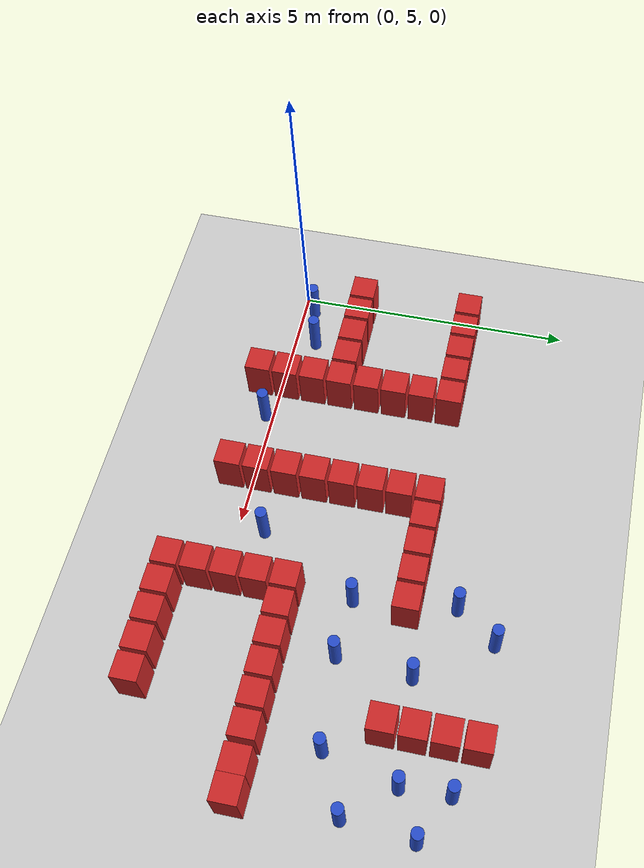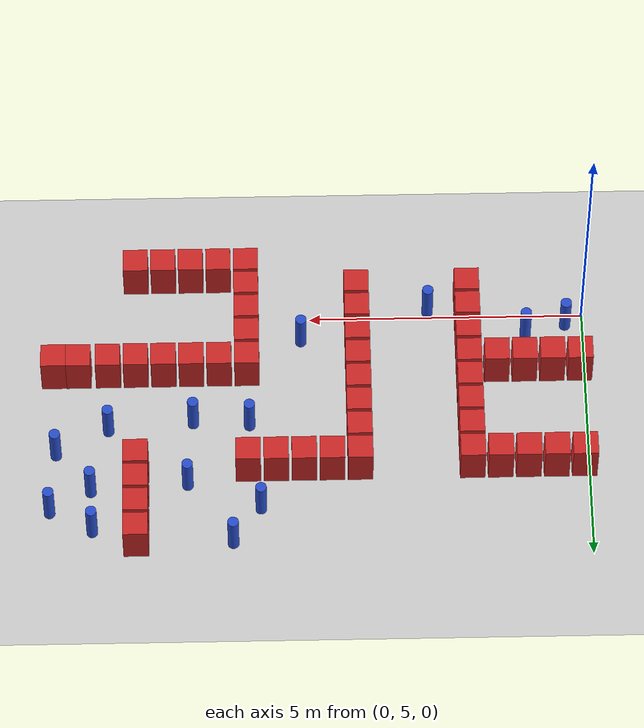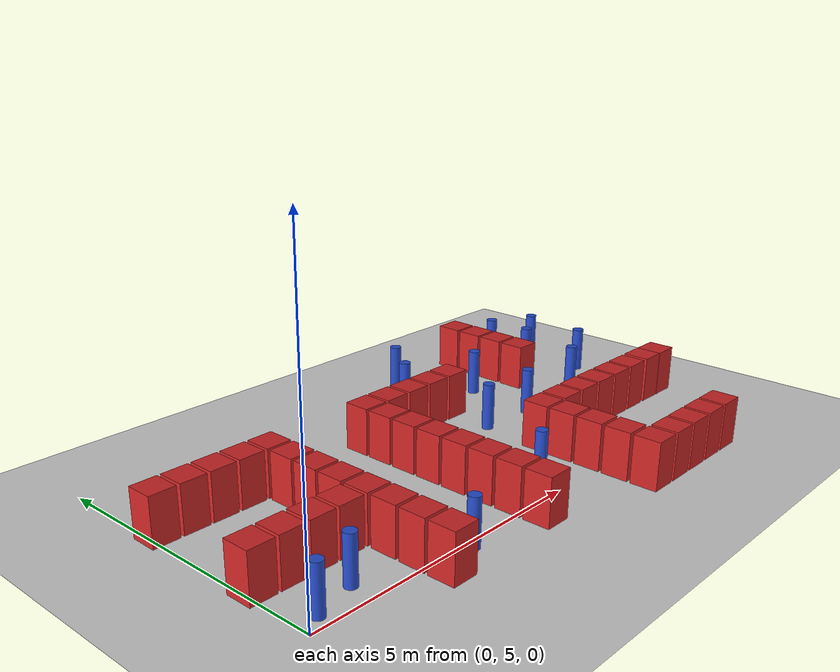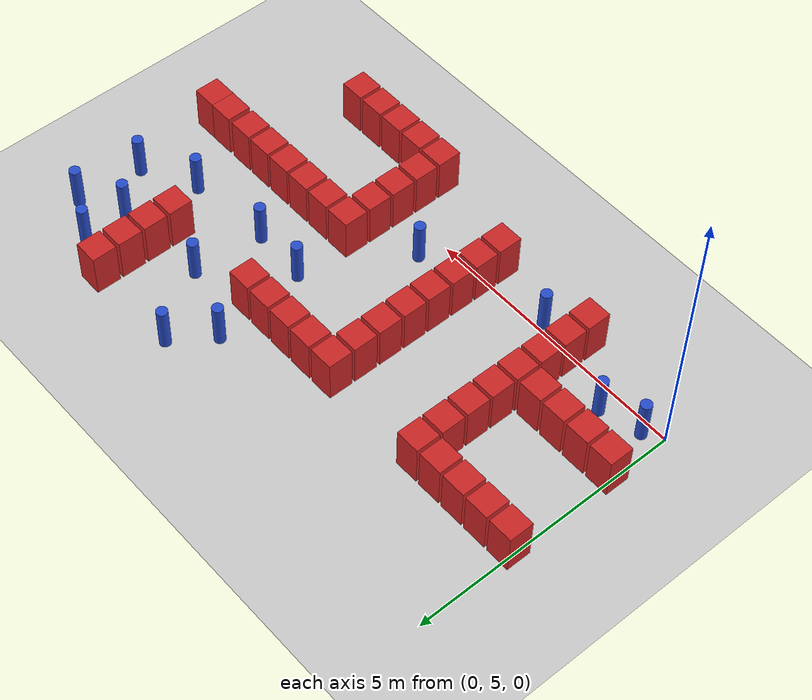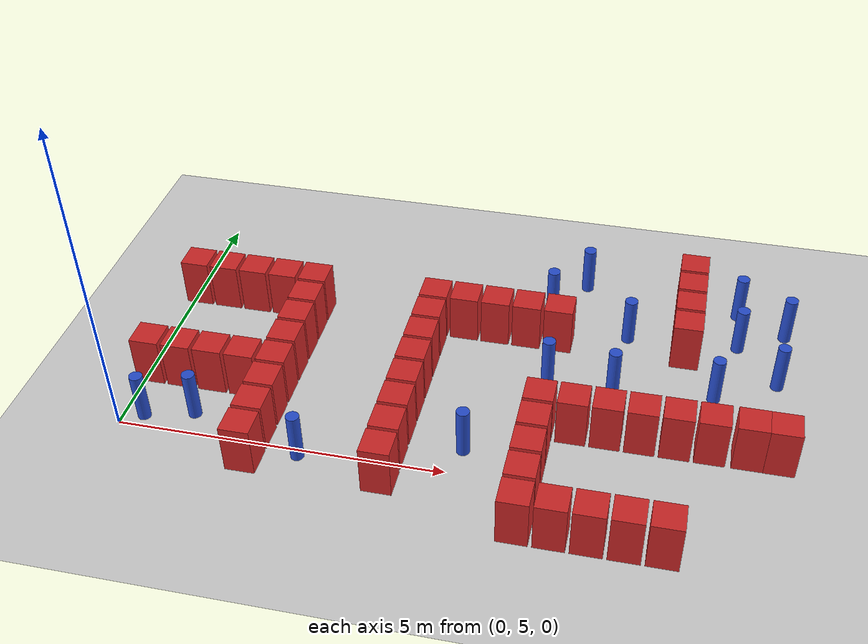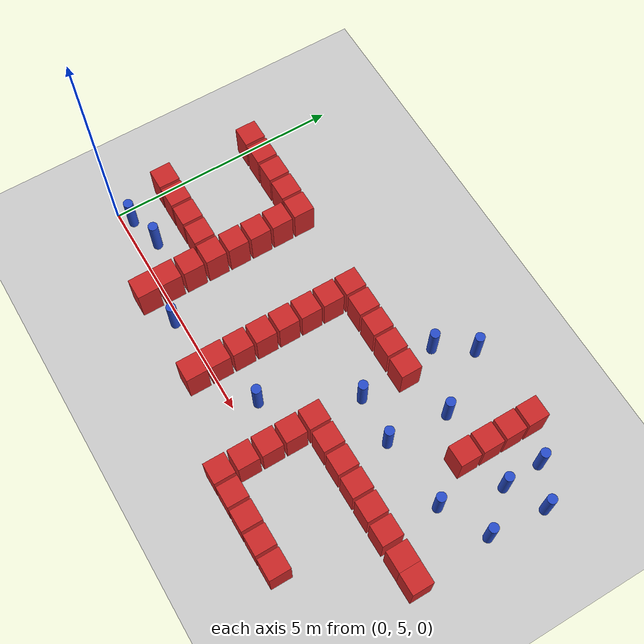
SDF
<sdf version="1.6">
 <world name="default">
  <model name="ground_plane">
   <static>1</static>
   <link name="link">
    <collision name="collision">
     <geometry><plane><normal>0 0 1</normal><size>100 100</size></plane></geometry>
     <surface><friction><ode><mu>100</mu><mu2>50</mu2></ode></friction></surface>
    </collision>
    <visual name="visual">
     <cast_shadows>0</cast_shadows>
     <geometry><plane><normal>0 0 1</normal><size>100 100</size></plane></geometry>
     <material>
      <script><uri>file://media/materials/scripts/gazebo.material</uri><name>Gazebo/Grey</name></script>
     </material>
    </visual>
   </link>
  </model>
  <model name="box_obstacle163">
   <static>0</static>
   <link name="box_obstacle">
    <pose>0 0 0.1 0 -0 0</pose>
    <inertial>
     <mass>100</mass>
     <inertia>
      <ixx>0.166667</ixx>
      <ixy>0</ixy>
      <ixz>0</ixz>
      <iyy>0.166667</iyy>
      <iyz>0</iyz>
      <izz>0.166667</izz>
     </inertia>
    </inertial>
    <collision name="collision"><geometry><box><size>0.45 0.45 0.8</size></box></geometry></collision>
    <visual name="visual">
     <geometry><box><size>0.45 0.45 0.8</size></box></geometry>
     <material>
      <script><name>Gazebo/Red</name><uri>file://media/materials/scripts/gazebo.material</uri></script>
     </material>
    </visual>
   </link>
   <pose>0.099553 6.15973 0.299997 -3e-06 5e-06 -4e-06</pose>
  </model>
  <model name="box_obstacle164">
   <static>0</static>
   <link name="box_obstacle">
    <pose>0 0 0.1 0 -0 0</pose>
    <inertial>
     <mass>100</mass>
     <inertia>
      <ixx>0.166667</ixx>
      <ixy>0</ixy>
      <ixz>0</ixz>
      <iyy>0.166667</iyy>
      <iyz>0</iyz>
      <izz>0.166667</izz>
     </inertia>
    </inertial>
    <collision name="collision"><geometry><box><size>0.45 0.45 0.8</size></box></geometry></collision>
    <visual name="visual">
     <geometry><box><size>0.45 0.45 0.8</size></box></geometry>
     <material>
      <script><name>Gazebo/Red</name><uri>file://media/materials/scripts/gazebo.material</uri></script>
     </material>
    </visual>
   </link>
   <pose>0.099553 8.17973 0.299997 -3e-06 5e-06 -4e-06</pose>
  </model>
  <model name="box_obstacle170">
   <static>0</static>
   <link name="box_obstacle">
    <pose>0 0 0.1 0 -0 0</pose>
    <inertial>
     <mass>100</mass>
     <inertia>
      <ixx>0.166667</ixx>
      <ixy>0</ixy>
      <ixz>0</ixz>
      <iyy>0.166667</iyy>
      <iyz>0</iyz>
      <izz>0.166667</izz>
     </inertia>
    </inertial>
    <collision name="collision"><geometry><box><size>0.45 0.45 0.8</size></box></geometry></collision>
    <visual name="visual">
     <geometry><box><size>0.45 0.45 0.8</size></box></geometry>
     <material>
      <script><name>Gazebo/Red</name><uri>file://media/materials/scripts/gazebo.material</uri></script>
     </material>
    </visual>
   </link>
   <pose>0.604553 6.15973 0.299997 -3e-06 5e-06 -4e-06</pose>
  </model>
  <model name="box_obstacle171">
   <static>0</static>
   <link name="box_obstacle">
    <pose>0 0 0.1 0 -0 0</pose>
    <inertial>
     <mass>100</mass>
     <inertia>
      <ixx>0.166667</ixx>
      <ixy>0</ixy>
      <ixz>0</ixz>
      <iyy>0.166667</iyy>
      <iyz>0</iyz>
      <izz>0.166667</izz>
     </inertia>
    </inertial>
    <collision name="collision"><geometry><box><size>0.45 0.45 0.8</size></box></geometry></collision>
    <visual name="visual">
     <geometry><box><size>0.45 0.45 0.8</size></box></geometry>
     <material>
      <script><name>Gazebo/Red</name><uri>file://media/materials/scripts/gazebo.material</uri></script>
     </material>
    </visual>
   </link>
   <pose>0.604553 8.17973 0.299997 -3e-06 5e-06 -4e-06</pose>
  </model>
  <model name="box_obstacle177">
   <static>0</static>
   <link name="box_obstacle">
    <pose>0 0 0.1 0 -0 0</pose>
    <inertial>
     <mass>100</mass>
     <inertia>
      <ixx>0.166667</ixx>
      <ixy>0</ixy>
      <ixz>0</ixz>
      <iyy>0.166667</iyy>
      <iyz>0</iyz>
      <izz>0.166667</izz>
     </inertia>
    </inertial>
    <collision name="collision"><geometry><box><size>0.45 0.45 0.8</size></box></geometry></collision>
    <visual name="visual">
     <geometry><box><size>0.45 0.45 0.8</size></box></geometry>
     <material>
      <script><name>Gazebo/Red</name><uri>file://media/materials/scripts/gazebo.material</uri></script>
     </material>
    </visual>
   </link>
   <pose>1.10955 6.15973 0.299997 -3e-06 5e-06 -4e-06</pose>
  </model>
  <model name="box_obstacle178">
   <static>0</static>
   <link name="box_obstacle">
    <pose>0 0 0.1 0 -0 0</pose>
    <inertial>
     <mass>100</mass>
     <inertia>
      <ixx>0.166667</ixx>
      <ixy>0</ixy>
      <ixz>0</ixz>
      <iyy>0.166667</iyy>
      <iyz>0</iyz>
      <izz>0.166667</izz>
     </inertia>
    </inertial>
    <collision name="collision"><geometry><box><size>0.45 0.45 0.8</size></box></geometry></collision>
    <visual name="visual">
     <geometry><box><size>0.45 0.45 0.8</size></box></geometry>
     <material>
      <script><name>Gazebo/Red</name><uri>file://media/materials/scripts/gazebo.material</uri></script>
     </material>
    </visual>
   </link>
   <pose>1.10955 8.17973 0.299997 -3e-06 5e-06 -4e-06</pose>
  </model>
  <model name="box_obstacle184">
   <static>0</static>
   <link name="box_obstacle">
    <pose>0 0 0.1 0 -0 0</pose>
    <inertial>
     <mass>100</mass>
     <inertia>
      <ixx>0.166667</ixx>
      <ixy>0</ixy>
      <ixz>0</ixz>
      <iyy>0.166667</iyy>
      <iyz>0</iyz>
      <izz>0.166667</izz>
     </inertia>
    </inertial>
    <collision name="collision"><geometry><box><size>0.45 0.45 0.8</size></box></geometry></collision>
    <visual name="visual">
     <geometry><box><size>0.45 0.45 0.8</size></box></geometry>
     <material>
      <script><name>Gazebo/Red</name><uri>file://media/materials/scripts/gazebo.material</uri></script>
     </material>
    </visual>
   </link>
   <pose>1.61455 6.15973 0.299997 -3e-06 5e-06 -4e-06</pose>
  </model>
  <model name="box_obstacle185">
   <static>0</static>
   <link name="box_obstacle">
    <pose>0 0 0.1 0 -0 0</pose>
    <inertial>
     <mass>100</mass>
     <inertia>
      <ixx>0.166667</ixx>
      <ixy>0</ixy>
      <ixz>0</ixz>
      <iyy>0.166667</iyy>
      <iyz>0</iyz>
      <izz>0.166667</izz>
     </inertia>
    </inertial>
    <collision name="collision"><geometry><box><size>0.45 0.45 0.8</size></box></geometry></collision>
    <visual name="visual">
     <geometry><box><size>0.45 0.45 0.8</size></box></geometry>
     <material>
      <script><name>Gazebo/Red</name><uri>file://media/materials/scripts/gazebo.material</uri></script>
     </material>
    </visual>
   </link>
   <pose>1.61455 8.17973 0.299997 -3e-06 5e-06 -4e-06</pose>
  </model>
  <model name="box_obstacle199">
   <static>0</static>
   <link name="box_obstacle">
    <pose>0 0 0.1 0 -0 0</pose>
    <inertial>
     <mass>100</mass>
     <inertia>
      <ixx>0.166667</ixx>
      <ixy>0</ixy>
      <ixz>0</ixz>
      <iyy>0.166667</iyy>
      <iyz>0</iyz>
      <izz>0.166667</izz>
     </inertia>
    </inertial>
    <collision name="collision"><geometry><box><size>0.45 0.45 0.8</size></box></geometry></collision>
    <visual name="visual">
     <geometry><box><size>0.45 0.45 0.8</size></box></geometry>
     <material>
      <script><name>Gazebo/Red</name><uri>file://media/materials/scripts/gazebo.material</uri></script>
     </material>
    </visual>
   </link>
   <pose>2.11955 4.64473 0.299997 -3e-06 5e-06 -4e-06</pose>
  </model>
  <model name="box_obstacle200">
   <static>0</static>
   <link name="box_obstacle">
    <pose>0 0 0.1 0 -0 0</pose>
    <inertial>
     <mass>100</mass>
     <inertia>
      <ixx>0.166667</ixx>
      <ixy>0</ixy>
      <ixz>0</ixz>
      <iyy>0.166667</iyy>
      <iyz>0</iyz>
      <izz>0.166667</izz>
     </inertia>
    </inertial>
    <collision name="collision"><geometry><box><size>0.45 0.45 0.8</size></box></geometry></collision>
    <visual name="visual">
     <geometry><box><size>0.45 0.45 0.8</size></box></geometry>
     <material>
      <script><name>Gazebo/Red</name><uri>file://media/materials/scripts/gazebo.material</uri></script>
     </material>
    </visual>
   </link>
   <pose>2.11955 5.14973 0.299997 -3e-06 5e-06 -4e-06</pose>
  </model>
  <model name="box_obstacle201">
   <static>0</static>
   <link name="box_obstacle">
    <pose>0 0 0.1 0 -0 0</pose>
    <inertial>
     <mass>100</mass>
     <inertia>
      <ixx>0.166667</ixx>
      <ixy>0</ixy>
      <ixz>0</ixz>
      <iyy>0.166667</iyy>
      <iyz>0</iyz>
      <izz>0.166667</izz>
     </inertia>
    </inertial>
    <collision name="collision"><geometry><box><size>0.45 0.45 0.8</size></box></geometry></collision>
    <visual name="visual">
     <geometry><box><size>0.45 0.45 0.8</size></box></geometry>
     <material>
      <script><name>Gazebo/Red</name><uri>file://media/materials/scripts/gazebo.material</uri></script>
     </material>
    </visual>
   </link>
   <pose>2.11955 5.65473 0.299997 -3e-06 5e-06 -4e-06</pose>
  </model>
  <model name="box_obstacle202">
   <static>0</static>
   <link name="box_obstacle">
    <pose>0 0 0.1 0 -0 0</pose>
    <inertial>
     <mass>100</mass>
     <inertia>
      <ixx>0.166667</ixx>
      <ixy>0</ixy>
      <ixz>0</ixz>
      <iyy>0.166667</iyy>
      <iyz>0</iyz>
      <izz>0.166667</izz>
     </inertia>
    </inertial>
    <collision name="collision"><geometry><box><size>0.45 0.45 0.8</size></box></geometry></collision>
    <visual name="visual">
     <geometry><box><size>0.45 0.45 0.8</size></box></geometry>
     <material>
      <script><name>Gazebo/Red</name><uri>file://media/materials/scripts/gazebo.material</uri></script>
     </material>
    </visual>
   </link>
   <pose>2.11955 6.15973 0.299997 -3e-06 5e-06 -4e-06</pose>
  </model>
  <model name="box_obstacle203">
   <static>0</static>
   <link name="box_obstacle">
    <pose>0 0 0.1 0 -0 0</pose>
    <inertial>
     <mass>100</mass>
     <inertia>
      <ixx>0.166667</ixx>
      <ixy>0</ixy>
      <ixz>0</ixz>
      <iyy>0.166667</iyy>
      <iyz>0</iyz>
      <izz>0.166667</izz>
     </inertia>
    </inertial>
    <collision name="collision"><geometry><box><size>0.45 0.45 0.8</size></box></geometry></collision>
    <visual name="visual">
     <geometry><box><size>0.45 0.45 0.8</size></box></geometry>
     <material>
      <script><name>Gazebo/Red</name><uri>file://media/materials/scripts/gazebo.material</uri></script>
     </material>
    </visual>
   </link>
   <pose>2.11955 6.66473 0.299997 -3e-06 5e-06 -4e-06</pose>
  </model>
  <model name="box_obstacle204">
   <static>0</static>
   <link name="box_obstacle">
    <pose>0 0 0.1 0 -0 0</pose>
    <inertial>
     <mass>100</mass>
     <inertia>
      <ixx>0.166667</ixx>
      <ixy>0</ixy>
      <ixz>0</ixz>
      <iyy>0.166667</iyy>
      <iyz>0</iyz>
      <izz>0.166667</izz>
     </inertia>
    </inertial>
    <collision name="collision"><geometry><box><size>0.45 0.45 0.8</size></box></geometry></collision>
    <visual name="visual">
     <geometry><box><size>0.45 0.45 0.8</size></box></geometry>
     <material>
      <script><name>Gazebo/Red</name><uri>file://media/materials/scripts/gazebo.material</uri></script>
     </material>
    </visual>
   </link>
   <pose>2.11955 7.16973 0.299997 -3e-06 5e-06 -4e-06</pose>
  </model>
  <model name="box_obstacle205">
   <static>0</static>
   <link name="box_obstacle">
    <pose>0 0 0.1 0 -0 0</pose>
    <inertial>
     <mass>100</mass>
     <inertia>
      <ixx>0.166667</ixx>
      <ixy>0</ixy>
      <ixz>0</ixz>
      <iyy>0.166667</iyy>
      <iyz>0</iyz>
      <izz>0.166667</izz>
     </inertia>
    </inertial>
    <collision name="collision"><geometry><box><size>0.45 0.45 0.8</size></box></geometry></collision>
    <visual name="visual">
     <geometry><box><size>0.45 0.45 0.8</size></box></geometry>
     <material>
      <script><name>Gazebo/Red</name><uri>file://media/materials/scripts/gazebo.material</uri></script>
     </material>
    </visual>
   </link>
   <pose>2.11955 7.67473 0.299997 -3e-06 5e-06 -4e-06</pose>
  </model>
  <model name="box_obstacle206">
   <static>0</static>
   <link name="box_obstacle">
    <pose>0 0 0.1 0 -0 0</pose>
    <inertial>
     <mass>100</mass>
     <inertia>
      <ixx>0.166667</ixx>
      <ixy>0</ixy>
      <ixz>0</ixz>
      <iyy>0.166667</iyy>
      <iyz>0</iyz>
      <izz>0.166667</izz>
     </inertia>
    </inertial>
    <collision name="collision"><geometry><box><size>0.45 0.45 0.8</size></box></geometry></collision>
    <visual name="visual">
     <geometry><box><size>0.45 0.45 0.8</size></box></geometry>
     <material>
      <script><name>Gazebo/Red</name><uri>file://media/materials/scripts/gazebo.material</uri></script>
     </material>
    </visual>
   </link>
   <pose>2.11955 8.17973 0.299997 -3e-06 5e-06 -4e-06</pose>
  </model>
  <model name="box_obstacle238">
   <static>0</static>
   <link name="box_obstacle">
    <pose>0 0 0.1 0 -0 0</pose>
    <inertial>
     <mass>100</mass>
     <inertia>
      <ixx>0.166667</ixx>
      <ixy>0</ixy>
      <ixz>0</ixz>
      <iyy>0.166667</iyy>
      <iyz>0</iyz>
      <izz>0.166667</izz>
     </inertia>
    </inertial>
    <collision name="collision"><geometry><box><size>0.45 0.45 0.8</size></box></geometry></collision>
    <visual name="visual">
     <geometry><box><size>0.45 0.45 0.8</size></box></geometry>
     <material>
      <script><name>Gazebo/Red</name><uri>file://media/materials/scripts/gazebo.material</uri></script>
     </material>
    </visual>
   </link>
   <pose>4.13955 4.64473 0.299997 -3e-06 5e-06 -4e-06</pose>
  </model>
  <model name="box_obstacle239">
   <static>0</static>
   <link name="box_obstacle">
    <pose>0 0 0.1 0 -0 0</pose>
    <inertial>
     <mass>100</mass>
     <inertia>
      <ixx>0.166667</ixx>
      <ixy>0</ixy>
      <ixz>0</ixz>
      <iyy>0.166667</iyy>
      <iyz>0</iyz>
      <izz>0.166667</izz>
     </inertia>
    </inertial>
    <collision name="collision"><geometry><box><size>0.45 0.45 0.8</size></box></geometry></collision>
    <visual name="visual">
     <geometry><box><size>0.45 0.45 0.8</size></box></geometry>
     <material>
      <script><name>Gazebo/Red</name><uri>file://media/materials/scripts/gazebo.material</uri></script>
     </material>
    </visual>
   </link>
   <pose>4.13955 5.14973 0.299997 -3e-06 5e-06 -4e-06</pose>
  </model>
  <model name="box_obstacle240">
   <static>0</static>
   <link name="box_obstacle">
    <pose>0 0 0.1 0 -0 0</pose>
    <inertial>
     <mass>100</mass>
     <inertia>
      <ixx>0.166667</ixx>
      <ixy>0</ixy>
      <ixz>0</ixz>
      <iyy>0.166667</iyy>
      <iyz>0</iyz>
      <izz>0.166667</izz>
     </inertia>
    </inertial>
    <collision name="collision"><geometry><box><size>0.45 0.45 0.8</size></box></geometry></collision>
    <visual name="visual">
     <geometry><box><size>0.45 0.45 0.8</size></box></geometry>
     <material>
      <script><name>Gazebo/Red</name><uri>file://media/materials/scripts/gazebo.material</uri></script>
     </material>
    </visual>
   </link>
   <pose>4.13955 5.65473 0.299997 -3e-06 5e-06 -4e-06</pose>
  </model>
  <model name="box_obstacle241">
   <static>0</static>
   <link name="box_obstacle">
    <pose>0 0 0.1 0 -0 0</pose>
    <inertial>
     <mass>100</mass>
     <inertia>
      <ixx>0.166667</ixx>
      <ixy>0</ixy>
      <ixz>0</ixz>
      <iyy>0.166667</iyy>
      <iyz>0</iyz>
      <izz>0.166667</izz>
     </inertia>
    </inertial>
    <collision name="collision"><geometry><box><size>0.45 0.45 0.8</size></box></geometry></collision>
    <visual name="visual">
     <geometry><box><size>0.45 0.45 0.8</size></box></geometry>
     <material>
      <script><name>Gazebo/Red</name><uri>file://media/materials/scripts/gazebo.material</uri></script>
     </material>
    </visual>
   </link>
   <pose>4.13955 6.15973 0.299997 -3e-06 5e-06 -4e-06</pose>
  </model>
  <model name="box_obstacle242">
   <static>0</static>
   <link name="box_obstacle">
    <pose>0 0 0.1 0 -0 0</pose>
    <inertial>
     <mass>100</mass>
     <inertia>
      <ixx>0.166667</ixx>
      <ixy>0</ixy>
      <ixz>0</ixz>
      <iyy>0.166667</iyy>
      <iyz>0</iyz>
      <izz>0.166667</izz>
     </inertia>
    </inertial>
    <collision name="collision"><geometry><box><size>0.45 0.45 0.8</size></box></geometry></collision>
    <visual name="visual">
     <geometry><box><size>0.45 0.45 0.8</size></box></geometry>
     <material>
      <script><name>Gazebo/Red</name><uri>file://media/materials/scripts/gazebo.material</uri></script>
     </material>
    </visual>
   </link>
   <pose>4.13955 6.66473 0.299997 -3e-06 5e-06 -4e-06</pose>
  </model>
  <model name="box_obstacle243">
   <static>0</static>
   <link name="box_obstacle">
    <pose>0 0 0.1 0 -0 0</pose>
    <inertial>
     <mass>100</mass>
     <inertia>
      <ixx>0.166667</ixx>
      <ixy>0</ixy>
      <ixz>0</ixz>
      <iyy>0.166667</iyy>
      <iyz>0</iyz>
      <izz>0.166667</izz>
     </inertia>
    </inertial>
    <collision name="collision"><geometry><box><size>0.45 0.45 0.8</size></box></geometry></collision>
    <visual name="visual">
     <geometry><box><size>0.45 0.45 0.8</size></box></geometry>
     <material>
      <script><name>Gazebo/Red</name><uri>file://media/materials/scripts/gazebo.material</uri></script>
     </material>
    </visual>
   </link>
   <pose>4.13955 7.16973 0.299997 -3e-06 5e-06 -4e-06</pose>
  </model>
  <model name="box_obstacle244">
   <static>0</static>
   <link name="box_obstacle">
    <pose>0 0 0.1 0 -0 0</pose>
    <inertial>
     <mass>100</mass>
     <inertia>
      <ixx>0.166667</ixx>
      <ixy>0</ixy>
      <ixz>0</ixz>
      <iyy>0.166667</iyy>
      <iyz>0</iyz>
      <izz>0.166667</izz>
     </inertia>
    </inertial>
    <collision name="collision"><geometry><box><size>0.45 0.45 0.8</size></box></geometry></collision>
    <visual name="visual">
     <geometry><box><size>0.45 0.45 0.8</size></box></geometry>
     <material>
      <script><name>Gazebo/Red</name><uri>file://media/materials/scripts/gazebo.material</uri></script>
     </material>
    </visual>
   </link>
   <pose>4.13955 7.67473 0.299997 -3e-06 5e-06 -4e-06</pose>
  </model>
  <model name="box_obstacle245">
   <static>0</static>
   <link name="box_obstacle">
    <pose>0 0 0.1 0 -0 0</pose>
    <inertial>
     <mass>100</mass>
     <inertia>
      <ixx>0.166667</ixx>
      <ixy>0</ixy>
      <ixz>0</ixz>
      <iyy>0.166667</iyy>
      <iyz>0</iyz>
      <izz>0.166667</izz>
     </inertia>
    </inertial>
    <collision name="collision"><geometry><box><size>0.45 0.45 0.8</size></box></geometry></collision>
    <visual name="visual">
     <geometry><box><size>0.45 0.45 0.8</size></box></geometry>
     <material>
      <script><name>Gazebo/Red</name><uri>file://media/materials/scripts/gazebo.material</uri></script>
     </material>
    </visual>
   </link>
   <pose>4.13955 8.17973 0.299997 -3e-06 5e-06 -4e-06</pose>
  </model>
  <model name="box_obstacle249">
   <static>0</static>
   <link name="box_obstacle">
    <pose>0 0 0.1 0 -0 0</pose>
    <inertial>
     <mass>100</mass>
     <inertia>
      <ixx>0.166667</ixx>
      <ixy>0</ixy>
      <ixz>0</ixz>
      <iyy>0.166667</iyy>
      <iyz>0</iyz>
      <izz>0.166667</izz>
     </inertia>
    </inertial>
    <collision name="collision"><geometry><box><size>0.45 0.45 0.8</size></box></geometry></collision>
    <visual name="visual">
     <geometry><box><size>0.45 0.45 0.8</size></box></geometry>
     <material>
      <script><name>Gazebo/Red</name><uri>file://media/materials/scripts/gazebo.material</uri></script>
     </material>
    </visual>
   </link>
   <pose>4.64455 8.17973 0.299997 -3e-06 5e-06 -4e-06</pose>
  </model>
  <model name="box_obstacle253">
   <static>0</static>
   <link name="box_obstacle">
    <pose>0 0 0.1 0 -0 0</pose>
    <inertial>
     <mass>100</mass>
     <inertia>
      <ixx>0.166667</ixx>
      <ixy>0</ixy>
      <ixz>0</ixz>
      <iyy>0.166667</iyy>
      <iyz>0</iyz>
      <izz>0.166667</izz>
     </inertia>
    </inertial>
    <collision name="collision"><geometry><box><size>0.45 0.45 0.8</size></box></geometry></collision>
    <visual name="visual">
     <geometry><box><size>0.45 0.45 0.8</size></box></geometry>
     <material>
      <script><name>Gazebo/Red</name><uri>file://media/materials/scripts/gazebo.material</uri></script>
     </material>
    </visual>
   </link>
   <pose>5.14955 8.17973 0.299997 -3e-06 5e-06 -4e-06</pose>
  </model>
  <model name="box_obstacle257">
   <static>0</static>
   <link name="box_obstacle">
    <pose>0 0 0.1 0 -0 0</pose>
    <inertial>
     <mass>100</mass>
     <inertia>
      <ixx>0.166667</ixx>
      <ixy>0</ixy>
      <ixz>0</ixz>
      <iyy>0.166667</iyy>
      <iyz>0</iyz>
      <izz>0.166667</izz>
     </inertia>
    </inertial>
    <collision name="collision"><geometry><box><size>0.45 0.45 0.8</size></box></geometry></collision>
    <visual name="visual">
     <geometry><box><size>0.45 0.45 0.8</size></box></geometry>
     <material>
      <script><name>Gazebo/Red</name><uri>file://media/materials/scripts/gazebo.material</uri></script>
     </material>
    </visual>
   </link>
   <pose>5.65455 8.17973 0.299997 -3e-06 5e-06 -4e-06</pose>
  </model>
  <model name="box_obstacle276">
   <static>0</static>
   <link name="box_obstacle">
    <pose>0 0 0.1 0 -0 0</pose>
    <inertial>
     <mass>100</mass>
     <inertia>
      <ixx>0.166667</ixx>
      <ixy>0</ixy>
      <ixz>0</ixz>
      <iyy>0.166667</iyy>
      <iyz>0</iyz>
      <izz>0.166667</izz>
     </inertia>
    </inertial>
    <collision name="collision"><geometry><box><size>0.45 0.45 0.8</size></box></geometry></collision>
    <visual name="visual">
     <geometry><box><size>0.45 0.45 0.8</size></box></geometry>
     <material>
      <script><name>Gazebo/Red</name><uri>file://media/materials/scripts/gazebo.material</uri></script>
     </material>
    </visual>
   </link>
   <pose>6.15955 4.13973 0.299997 -3e-06 5e-06 -4e-06</pose>
  </model>
  <model name="box_obstacle277">
   <static>0</static>
   <link name="box_obstacle">
    <pose>0 0 0.1 0 -0 0</pose>
    <inertial>
     <mass>100</mass>
     <inertia>
      <ixx>0.166667</ixx>
      <ixy>0</ixy>
      <ixz>0</ixz>
      <iyy>0.166667</iyy>
      <iyz>0</iyz>
      <izz>0.166667</izz>
     </inertia>
    </inertial>
    <collision name="collision"><geometry><box><size>0.45 0.45 0.8</size></box></geometry></collision>
    <visual name="visual">
     <geometry><box><size>0.45 0.45 0.8</size></box></geometry>
     <material>
      <script><name>Gazebo/Red</name><uri>file://media/materials/scripts/gazebo.material</uri></script>
     </material>
    </visual>
   </link>
   <pose>6.15955 4.64473 0.299997 -3e-06 5e-06 -4e-06</pose>
  </model>
  <model name="box_obstacle278">
   <static>0</static>
   <link name="box_obstacle">
    <pose>0 0 0.1 0 -0 0</pose>
    <inertial>
     <mass>100</mass>
     <inertia>
      <ixx>0.166667</ixx>
      <ixy>0</ixy>
      <ixz>0</ixz>
      <iyy>0.166667</iyy>
      <iyz>0</iyz>
      <izz>0.166667</izz>
     </inertia>
    </inertial>
    <collision name="collision"><geometry><box><size>0.45 0.45 0.8</size></box></geometry></collision>
    <visual name="visual">
     <geometry><box><size>0.45 0.45 0.8</size></box></geometry>
     <material>
      <script><name>Gazebo/Red</name><uri>file://media/materials/scripts/gazebo.material</uri></script>
     </material>
    </visual>
   </link>
   <pose>6.15955 5.14973 0.299997 -3e-06 5e-06 -4e-06</pose>
  </model>
  <model name="box_obstacle279">
   <static>0</static>
   <link name="box_obstacle">
    <pose>0 0 0.1 0 -0 0</pose>
    <inertial>
     <mass>100</mass>
     <inertia>
      <ixx>0.166667</ixx>
      <ixy>0</ixy>
      <ixz>0</ixz>
      <iyy>0.166667</iyy>
      <iyz>0</iyz>
      <izz>0.166667</izz>
     </inertia>
    </inertial>
    <collision name="collision"><geometry><box><size>0.45 0.45 0.8</size></box></geometry></collision>
    <visual name="visual">
     <geometry><box><size>0.45 0.45 0.8</size></box></geometry>
     <material>
      <script><name>Gazebo/Red</name><uri>file://media/materials/scripts/gazebo.material</uri></script>
     </material>
    </visual>
   </link>
   <pose>6.15955 5.65473 0.299997 -3e-06 5e-06 -4e-06</pose>
  </model>
  <model name="box_obstacle280">
   <static>0</static>
   <link name="box_obstacle">
    <pose>0 0 0.1 0 -0 0</pose>
    <inertial>
     <mass>100</mass>
     <inertia>
      <ixx>0.166667</ixx>
      <ixy>0</ixy>
      <ixz>0</ixz>
      <iyy>0.166667</iyy>
      <iyz>0</iyz>
      <izz>0.166667</izz>
     </inertia>
    </inertial>
    <collision name="collision"><geometry><box><size>0.45 0.45 0.8</size></box></geometry></collision>
    <visual name="visual">
     <geometry><box><size>0.45 0.45 0.8</size></box></geometry>
     <material>
      <script><name>Gazebo/Red</name><uri>file://media/materials/scripts/gazebo.material</uri></script>
     </material>
    </visual>
   </link>
   <pose>6.15955 6.15973 0.299997 -3e-06 5e-06 -4e-06</pose>
  </model>
  <model name="box_obstacle281">
   <static>0</static>
   <link name="box_obstacle">
    <pose>0 0 0.1 0 -0 0</pose>
    <inertial>
     <mass>100</mass>
     <inertia>
      <ixx>0.166667</ixx>
      <ixy>0</ixy>
      <ixz>0</ixz>
      <iyy>0.166667</iyy>
      <iyz>0</iyz>
      <izz>0.166667</izz>
     </inertia>
    </inertial>
    <collision name="collision"><geometry><box><size>0.45 0.45 0.8</size></box></geometry></collision>
    <visual name="visual">
     <geometry><box><size>0.45 0.45 0.8</size></box></geometry>
     <material>
      <script><name>Gazebo/Red</name><uri>file://media/materials/scripts/gazebo.material</uri></script>
     </material>
    </visual>
   </link>
   <pose>6.15955 8.17973 0.299997 -3e-06 5e-06 -4e-06</pose>
  </model>
  <model name="cylinder_obstacle7">
   <static>0</static>
   <link name="link">
    <pose>0 0 1 0 -0 0</pose>
    <inertial>
     <mass>100</mass>
     <inertia>
      <ixx>0.166667</ixx>
      <ixy>0</ixy>
      <ixz>0</ixz>
      <iyy>0.166667</iyy>
      <iyz>0</iyz>
      <izz>0.166667</izz>
     </inertia>
    </inertial>
    <collision name="collision">
     <geometry><cylinder><radius>0.1</radius><length>0.8</length></cylinder></geometry>
    </collision>
    <visual name="visual">
     <geometry><cylinder><radius>0.1</radius><length>0.8</length></cylinder></geometry>
     <material>
      <script><name>Gazebo/Blue</name><uri>file://media/materials/scripts/gazebo.material</uri></script>
     </material>
    </visual>
   </link>
   <pose>9.62781 7.81891 -0.600002 3e-06 1e-06 0.003885</pose>
  </model>
  <model name="cylinder_obstacle9">
   <static>0</static>
   <link name="link">
    <pose>0 0 1 0 -0 0</pose>
    <inertial>
     <mass>100</mass>
     <inertia>
      <ixx>0.166667</ixx>
      <ixy>0</ixy>
      <ixz>0</ixz>
      <iyy>0.166667</iyy>
      <iyz>0</iyz>
      <izz>0.166667</izz>
     </inertia>
    </inertial>
    <collision name="collision">
     <geometry><cylinder><radius>0.1</radius><length>0.8</length></cylinder></geometry>
    </collision>
    <visual name="visual">
     <geometry><cylinder><radius>0.1</radius><length>0.8</length></cylinder></geometry>
     <material>
      <script><name>Gazebo/Blue</name><uri>file://media/materials/scripts/gazebo.material</uri></script>
     </material>
    </visual>
   </link>
   <pose>6.44064 9.69757 -0.600002 3e-06 1e-06 0.003885</pose>
  </model>
  <model name="cylinder_obstacle13">
   <static>0</static>
   <link name="link">
    <pose>0 0 1 0 -0 0</pose>
    <inertial>
     <mass>100</mass>
     <inertia>
      <ixx>0.166667</ixx>
      <ixy>0</ixy>
      <ixz>0</ixz>
      <iyy>0.166667</iyy>
      <iyz>0</iyz>
      <izz>0.166667</izz>
     </inertia>
    </inertial>
    <collision name="collision">
     <geometry><cylinder><radius>0.1</radius><length>0.8</length></cylinder></geometry>
    </collision>
    <visual name="visual">
     <geometry><cylinder><radius>0.1</radius><length>0.8</length></cylinder></geometry>
     <material>
      <script><name>Gazebo/Blue</name><uri>file://media/materials/scripts/gazebo.material</uri></script>
     </material>
    </visual>
   </link>
   <pose>8.96771 9.42528 -0.600002 3e-06 1e-06 0.003885</pose>
  </model>
  <model name="cylinder_obstacle18">
   <static>0</static>
   <link name="link">
    <pose>0 0 1 0 -0 0</pose>
    <inertial>
     <mass>100</mass>
     <inertia>
      <ixx>0.166667</ixx>
      <ixy>0</ixy>
      <ixz>0</ixz>
      <iyy>0.166667</iyy>
      <iyz>0</iyz>
      <izz>0.166667</izz>
     </inertia>
    </inertial>
    <collision name="collision">
     <geometry><cylinder><radius>0.1</radius><length>0.8</length></cylinder></geometry>
    </collision>
    <visual name="visual">
     <geometry><cylinder><radius>0.1</radius><length>0.8</length></cylinder></geometry>
     <material>
      <script><name>Gazebo/Blue</name><uri>file://media/materials/scripts/gazebo.material</uri></script>
     </material>
    </visual>
   </link>
   <pose>6.12456 7.2505 -0.600002 3e-06 1e-06 0.003885</pose>
  </model>
  <model name="cylinder_obstacle32">
   <static>0</static>
   <link name="link">
    <pose>0 0 1 0 -0 0</pose>
    <inertial>
     <mass>100</mass>
     <inertia>
      <ixx>0.166667</ixx>
      <ixy>0</ixy>
      <ixz>0</ixz>
      <iyy>0.166667</iyy>
      <iyz>0</iyz>
      <izz>0.166667</izz>
     </inertia>
    </inertial>
    <collision name="collision">
     <geometry><cylinder><radius>0.1</radius><length>0.8</length></cylinder></geometry>
    </collision>
    <visual name="visual">
     <geometry><cylinder><radius>0.1</radius><length>0.8</length></cylinder></geometry>
     <material>
      <script><name>Gazebo/Blue</name><uri>file://media/materials/scripts/gazebo.material</uri></script>
     </material>
    </visual>
   </link>
   <pose>2.83436 4.88071 -0.600002 3e-06 1e-06 0.003885</pose>
  </model>
  <model name="cylinder_obstacle40">
   <static>0</static>
   <link name="link">
    <pose>0 0 1 0 -0 0</pose>
    <inertial>
     <mass>100</mass>
     <inertia>
      <ixx>0.166667</ixx>
      <ixy>0</ixy>
      <ixz>0</ixz>
      <iyy>0.166667</iyy>
      <iyz>0</iyz>
      <izz>0.166667</izz>
     </inertia>
    </inertial>
    <collision name="collision">
     <geometry><cylinder><radius>0.1</radius><length>0.8</length></cylinder></geometry>
    </collision>
    <visual name="visual">
     <geometry><cylinder><radius>0.1</radius><length>0.8</length></cylinder></geometry>
     <material>
      <script><name>Gazebo/Blue</name><uri>file://media/materials/scripts/gazebo.material</uri></script>
     </material>
    </visual>
   </link>
   <pose>7.25001 8.48146 -0.600002 3e-06 1e-06 0.003885</pose>
  </model>
  <model name="cylinder_obstacle48">
   <static>0</static>
   <link name="link">
    <pose>0 0 1 0 -0 0</pose>
    <inertial>
     <mass>100</mass>
     <inertia>
      <ixx>0.166667</ixx>
      <ixy>0</ixy>
      <ixz>0</ixz>
      <iyy>0.166667</iyy>
      <iyz>0</iyz>
      <izz>0.166667</izz>
     </inertia>
    </inertial>
    <collision name="collision">
     <geometry><cylinder><radius>0.1</radius><length>0.8</length></cylinder></geometry>
    </collision>
    <visual name="visual">
     <geometry><cylinder><radius>0.1</radius><length>0.8</length></cylinder></geometry>
     <material>
      <script><name>Gazebo/Blue</name><uri>file://media/materials/scripts/gazebo.material</uri></script>
     </material>
    </visual>
   </link>
   <pose>5.93598 8.99464 -0.600002 3e-06 1e-06 0.003885</pose>
  </model>
  <model name="cylinder_obstacle55">
   <static>0</static>
   <link name="link">
    <pose>0 0 1 0 -0 0</pose>
    <inertial>
     <mass>100</mass>
     <inertia>
      <ixx>0.166667</ixx>
      <ixy>0</ixy>
      <ixz>0</ixz>
      <iyy>0.166667</iyy>
      <iyz>0</iyz>
      <izz>0.166667</izz>
     </inertia>
    </inertial>
    <collision name="collision">
     <geometry><cylinder><radius>0.1</radius><length>0.8</length></cylinder></geometry>
    </collision>
    <visual name="visual">
     <geometry><cylinder><radius>0.1</radius><length>0.8</length></cylinder></geometry>
     <material>
      <script><name>Gazebo/Blue</name><uri>file://media/materials/scripts/gazebo.material</uri></script>
     </material>
    </visual>
   </link>
   <pose>8.99689 8.59888 -0.600002 3e-06 1e-06 0.003885</pose>
  </model>
  <model name="box_obstacle285">
   <static>0</static>
   <link name="box_obstacle">
    <pose>0 0 0.1 0 -0 0</pose>
    <inertial>
     <mass>100</mass>
     <inertia>
      <ixx>0.166667</ixx>
      <ixy>0</ixy>
      <ixz>0</ixz>
      <iyy>0.166667</iyy>
      <iyz>0</iyz>
      <izz>0.166667</izz>
     </inertia>
    </inertial>
    <collision name="collision"><geometry><box><size>0.45 0.45 0.8</size></box></geometry></collision>
    <visual name="visual">
     <geometry><box><size>0.45 0.45 0.8</size></box></geometry>
     <material>
      <script><name>Gazebo/Red</name><uri>file://media/materials/scripts/gazebo.material</uri></script>
     </material>
    </visual>
   </link>
   <pose>6.66455 4.13973 0.299997 -3e-06 5e-06 -4e-06</pose>
  </model>
  <model name="box_obstacle286">
   <static>0</static>
   <link name="box_obstacle">
    <pose>0 0 0.1 0 -0 0</pose>
    <inertial>
     <mass>100</mass>
     <inertia>
      <ixx>0.166667</ixx>
      <ixy>0</ixy>
      <ixz>0</ixz>
      <iyy>0.166667</iyy>
      <iyz>0</iyz>
      <izz>0.166667</izz>
     </inertia>
    </inertial>
    <collision name="collision"><geometry><box><size>0.45 0.45 0.8</size></box></geometry></collision>
    <visual name="visual">
     <geometry><box><size>0.45 0.45 0.8</size></box></geometry>
     <material>
      <script><name>Gazebo/Red</name><uri>file://media/materials/scripts/gazebo.material</uri></script>
     </material>
    </visual>
   </link>
   <pose>6.66455 6.15973 0.299997 -3e-06 5e-06 -4e-06</pose>
  </model>
  <model name="box_obstacle290">
   <static>0</static>
   <link name="box_obstacle">
    <pose>0 0 0.1 0 -0 0</pose>
    <inertial>
     <mass>100</mass>
     <inertia>
      <ixx>0.166667</ixx>
      <ixy>0</ixy>
      <ixz>0</ixz>
      <iyy>0.166667</iyy>
      <iyz>0</iyz>
      <izz>0.166667</izz>
     </inertia>
    </inertial>
    <collision name="collision"><geometry><box><size>0.45 0.45 0.8</size></box></geometry></collision>
    <visual name="visual">
     <geometry><box><size>0.45 0.45 0.8</size></box></geometry>
     <material>
      <script><name>Gazebo/Red</name><uri>file://media/materials/scripts/gazebo.material</uri></script>
     </material>
    </visual>
   </link>
   <pose>7.16955 4.13973 0.299997 -3e-06 5e-06 -4e-06</pose>
  </model>
  <model name="box_obstacle291">
   <static>0</static>
   <link name="box_obstacle">
    <pose>0 0 0.1 0 -0 0</pose>
    <inertial>
     <mass>100</mass>
     <inertia>
      <ixx>0.166667</ixx>
      <ixy>0</ixy>
      <ixz>0</ixz>
      <iyy>0.166667</iyy>
      <iyz>0</iyz>
      <izz>0.166667</izz>
     </inertia>
    </inertial>
    <collision name="collision"><geometry><box><size>0.45 0.45 0.8</size></box></geometry></collision>
    <visual name="visual">
     <geometry><box><size>0.45 0.45 0.8</size></box></geometry>
     <material>
      <script><name>Gazebo/Red</name><uri>file://media/materials/scripts/gazebo.material</uri></script>
     </material>
    </visual>
   </link>
   <pose>7.16955 6.15973 0.299997 -3e-06 5e-06 -4e-06</pose>
  </model>
  <model name="box_obstacle295">
   <static>0</static>
   <link name="box_obstacle">
    <pose>0 0 0.1 0 -0 0</pose>
    <inertial>
     <mass>100</mass>
     <inertia>
      <ixx>0.166667</ixx>
      <ixy>0</ixy>
      <ixz>0</ixz>
      <iyy>0.166667</iyy>
      <iyz>0</iyz>
      <izz>0.166667</izz>
     </inertia>
    </inertial>
    <collision name="collision"><geometry><box><size>0.45 0.45 0.8</size></box></geometry></collision>
    <visual name="visual">
     <geometry><box><size>0.45 0.45 0.8</size></box></geometry>
     <material>
      <script><name>Gazebo/Red</name><uri>file://media/materials/scripts/gazebo.material</uri></script>
     </material>
    </visual>
   </link>
   <pose>7.67455 4.13973 0.299997 -3e-06 5e-06 -4e-06</pose>
  </model>
  <model name="box_obstacle296">
   <static>0</static>
   <link name="box_obstacle">
    <pose>0 0 0.1 0 -0 0</pose>
    <inertial>
     <mass>100</mass>
     <inertia>
      <ixx>0.166667</ixx>
      <ixy>0</ixy>
      <ixz>0</ixz>
      <iyy>0.166667</iyy>
      <iyz>0</iyz>
      <izz>0.166667</izz>
     </inertia>
    </inertial>
    <collision name="collision"><geometry><box><size>0.45 0.45 0.8</size></box></geometry></collision>
    <visual name="visual">
     <geometry><box><size>0.45 0.45 0.8</size></box></geometry>
     <material>
      <script><name>Gazebo/Red</name><uri>file://media/materials/scripts/gazebo.material</uri></script>
     </material>
    </visual>
   </link>
   <pose>7.67455 6.15973 0.299997 -3e-06 5e-06 -4e-06</pose>
  </model>
  <model name="box_obstacle312">
   <static>0</static>
   <link name="box_obstacle">
    <pose>0 0 0.1 0 -0 0</pose>
    <inertial>
     <mass>100</mass>
     <inertia>
      <ixx>0.166667</ixx>
      <ixy>0</ixy>
      <ixz>0</ixz>
      <iyy>0.166667</iyy>
      <iyz>0</iyz>
      <izz>0.166667</izz>
     </inertia>
    </inertial>
    <collision name="collision"><geometry><box><size>0.45 0.45 0.8</size></box></geometry></collision>
    <visual name="visual">
     <geometry><box><size>0.45 0.45 0.8</size></box></geometry>
     <material>
      <script><name>Gazebo/Red</name><uri>file://media/materials/scripts/gazebo.material</uri></script>
     </material>
    </visual>
   </link>
   <pose>8.17955 4.13973 0.299997 -3e-06 5e-06 -4e-06</pose>
  </model>
  <model name="box_obstacle313">
   <static>0</static>
   <link name="box_obstacle">
    <pose>0 0 0.1 0 -0 0</pose>
    <inertial>
     <mass>100</mass>
     <inertia>
      <ixx>0.166667</ixx>
      <ixy>0</ixy>
      <ixz>0</ixz>
      <iyy>0.166667</iyy>
      <iyz>0</iyz>
      <izz>0.166667</izz>
     </inertia>
    </inertial>
    <collision name="collision"><geometry><box><size>0.45 0.45 0.8</size></box></geometry></collision>
    <visual name="visual">
     <geometry><box><size>0.45 0.45 0.8</size></box></geometry>
     <material>
      <script><name>Gazebo/Red</name><uri>file://media/materials/scripts/gazebo.material</uri></script>
     </material>
    </visual>
   </link>
   <pose>8.17955 6.15973 0.299997 -3e-06 5e-06 -4e-06</pose>
  </model>
  <model name="box_obstacle314">
   <static>0</static>
   <link name="box_obstacle">
    <pose>0 0 0.1 0 -0 0</pose>
    <inertial>
     <mass>100</mass>
     <inertia>
      <ixx>0.166667</ixx>
      <ixy>0</ixy>
      <ixz>0</ixz>
      <iyy>0.166667</iyy>
      <iyz>0</iyz>
      <izz>0.166667</izz>
     </inertia>
    </inertial>
    <collision name="collision"><geometry><box><size>0.45 0.45 0.8</size></box></geometry></collision>
    <visual name="visual">
     <geometry><box><size>0.45 0.45 0.8</size></box></geometry>
     <material>
      <script><name>Gazebo/Red</name><uri>file://media/materials/scripts/gazebo.material</uri></script>
     </material>
    </visual>
   </link>
   <pose>8.17955 8.17973 0.299997 -3e-06 5e-06 -4e-06</pose>
  </model>
  <model name="box_obstacle315">
   <static>0</static>
   <link name="box_obstacle">
    <pose>0 0 0.1 0 -0 0</pose>
    <inertial>
     <mass>100</mass>
     <inertia>
      <ixx>0.166667</ixx>
      <ixy>0</ixy>
      <ixz>0</ixz>
      <iyy>0.166667</iyy>
      <iyz>0</iyz>
      <izz>0.166667</izz>
     </inertia>
    </inertial>
    <collision name="collision"><geometry><box><size>0.45 0.45 0.8</size></box></geometry></collision>
    <visual name="visual">
     <geometry><box><size>0.45 0.45 0.8</size></box></geometry>
     <material>
      <script><name>Gazebo/Red</name><uri>file://media/materials/scripts/gazebo.material</uri></script>
     </material>
    </visual>
   </link>
   <pose>8.17955 8.68473 0.299997 -3e-06 5e-06 -4e-06</pose>
  </model>
  <model name="box_obstacle316">
   <static>0</static>
   <link name="box_obstacle">
    <pose>0 0 0.1 0 -0 0</pose>
    <inertial>
     <mass>100</mass>
     <inertia>
      <ixx>0.166667</ixx>
      <ixy>0</ixy>
      <ixz>0</ixz>
      <iyy>0.166667</iyy>
      <iyz>0</iyz>
      <izz>0.166667</izz>
     </inertia>
    </inertial>
    <collision name="collision"><geometry><box><size>0.45 0.45 0.8</size></box></geometry></collision>
    <visual name="visual">
     <geometry><box><size>0.45 0.45 0.8</size></box></geometry>
     <material>
      <script><name>Gazebo/Red</name><uri>file://media/materials/scripts/gazebo.material</uri></script>
     </material>
    </visual>
   </link>
   <pose>8.17955 9.18973 0.299997 -3e-06 5e-06 -4e-06</pose>
  </model>
  <model name="box_obstacle317">
   <static>0</static>
   <link name="box_obstacle">
    <pose>0 0 0.1 0 -0 0</pose>
    <inertial>
     <mass>100</mass>
     <inertia>
      <ixx>0.166667</ixx>
      <ixy>0</ixy>
      <ixz>0</ixz>
      <iyy>0.166667</iyy>
      <iyz>0</iyz>
      <izz>0.166667</izz>
     </inertia>
    </inertial>
    <collision name="collision"><geometry><box><size>0.45 0.45 0.8</size></box></geometry></collision>
    <visual name="visual">
     <geometry><box><size>0.45 0.45 0.8</size></box></geometry>
     <material>
      <script><name>Gazebo/Red</name><uri>file://media/materials/scripts/gazebo.material</uri></script>
     </material>
    </visual>
   </link>
   <pose>8.17955 9.69473 0.299997 -3e-06 5e-06 -4e-06</pose>
  </model>
  <model name="box_obstacle319">
   <static>0</static>
   <link name="box_obstacle">
    <pose>0 0 0.1 0 -0 0</pose>
    <inertial>
     <mass>100</mass>
     <inertia>
      <ixx>0.166667</ixx>
      <ixy>0</ixy>
      <ixz>0</ixz>
      <iyy>0.166667</iyy>
      <iyz>0</iyz>
      <izz>0.166667</izz>
     </inertia>
    </inertial>
    <collision name="collision"><geometry><box><size>0.45 0.45 0.8</size></box></geometry></collision>
    <visual name="visual">
     <geometry><box><size>0.45 0.45 0.8</size></box></geometry>
     <material>
      <script><name>Gazebo/Red</name><uri>file://media/materials/scripts/gazebo.material</uri></script>
     </material>
    </visual>
   </link>
   <pose>8.68455 6.15973 0.299997 -3e-06 5e-06 -4e-06</pose>
  </model>
  <model name="box_obstacle321">
   <static>0</static>
   <link name="box_obstacle">
    <pose>0 0 0.1 0 -0 0</pose>
    <inertial>
     <mass>100</mass>
     <inertia>
      <ixx>0.166667</ixx>
      <ixy>0</ixy>
      <ixz>0</ixz>
      <iyy>0.166667</iyy>
      <iyz>0</iyz>
      <izz>0.166667</izz>
     </inertia>
    </inertial>
    <collision name="collision"><geometry><box><size>0.45 0.45 0.8</size></box></geometry></collision>
    <visual name="visual">
     <geometry><box><size>0.45 0.45 0.8</size></box></geometry>
     <material>
      <script><name>Gazebo/Red</name><uri>file://media/materials/scripts/gazebo.material</uri></script>
     </material>
    </visual>
   </link>
   <pose>9.21946 6.16122 0.300002 1e-06 -1.9e-05 -4.5e-05</pose>
  </model>
  <model name="box_obstacle323">
   <static>0</static>
   <link name="box_obstacle">
    <pose>0 0 0.1 0 -0 0</pose>
    <inertial>
     <mass>100</mass>
     <inertia>
      <ixx>0.166667</ixx>
      <ixy>0</ixy>
      <ixz>0</ixz>
      <iyy>0.166667</iyy>
      <iyz>0</iyz>
      <izz>0.166667</izz>
     </inertia>
    </inertial>
    <collision name="collision"><geometry><box><size>0.45 0.45 0.8</size></box></geometry></collision>
    <visual name="visual">
     <geometry><box><size>0.45 0.45 0.8</size></box></geometry>
     <material>
      <script><name>Gazebo/Red</name><uri>file://media/materials/scripts/gazebo.material</uri></script>
     </material>
    </visual>
   </link>
   <pose>9.66946 6.1586 0.3 1e-06 -4e-06 -3.9e-05</pose>
  </model>
  <model name="cylinder_obstacle65">
   <static>0</static>
   <link name="link">
    <pose>0 0 1 0 -0 0</pose>
    <inertial>
     <mass>100</mass>
     <inertia>
      <ixx>0.166667</ixx>
      <ixy>0</ixy>
      <ixz>0</ixz>
      <iyy>0.166667</iyy>
      <iyz>0</iyz>
      <izz>0.166667</izz>
     </inertia>
    </inertial>
    <collision name="collision">
     <geometry><cylinder><radius>0.1</radius><length>0.8</length></cylinder></geometry>
    </collision>
    <visual name="visual">
     <geometry><cylinder><radius>0.1</radius><length>0.8</length></cylinder></geometry>
     <material>
      <script><name>Gazebo/Blue</name><uri>file://media/materials/scripts/gazebo.material</uri></script>
     </material>
    </visual>
   </link>
   <pose>0.317644 5.20819 -0.600002 3e-06 1e-06 0.003885</pose>
  </model>
  <model name="cylinder_obstacle68">
   <static>0</static>
   <link name="link">
    <pose>0 0 1 0 -0 0</pose>
    <inertial>
     <mass>100</mass>
     <inertia>
      <ixx>0.166667</ixx>
      <ixy>0</ixy>
      <ixz>0</ixz>
      <iyy>0.166667</iyy>
      <iyz>0</iyz>
      <izz>0.166667</izz>
     </inertia>
    </inertial>
    <collision name="collision">
     <geometry><cylinder><radius>0.1</radius><length>0.8</length></cylinder></geometry>
    </collision>
    <visual name="visual">
     <geometry><cylinder><radius>0.1</radius><length>0.8</length></cylinder></geometry>
     <material>
      <script><name>Gazebo/Blue</name><uri>file://media/materials/scripts/gazebo.material</uri></script>
     </material>
    </visual>
   </link>
   <pose>9.73412 9.01989 -0.600002 3e-06 1e-06 0.003885</pose>
  </model>
  <model name="cylinder_obstacle79">
   <static>0</static>
   <link name="link">
    <pose>0 0 1 0 -0 0</pose>
    <inertial>
     <mass>100</mass>
     <inertia>
      <ixx>0.166667</ixx>
      <ixy>0</ixy>
      <ixz>0</ixz>
      <iyy>0.166667</iyy>
      <iyz>0</iyz>
      <izz>0.166667</izz>
     </inertia>
    </inertial>
    <collision name="collision">
     <geometry><cylinder><radius>0.1</radius><length>0.8</length></cylinder></geometry>
    </collision>
    <visual name="visual">
     <geometry><cylinder><radius>0.1</radius><length>0.8</length></cylinder></geometry>
     <material>
      <script><name>Gazebo/Blue</name><uri>file://media/materials/scripts/gazebo.material</uri></script>
     </material>
    </visual>
   </link>
   <pose>7.14344 7.19118 -0.600002 3e-06 1e-06 0.003885</pose>
  </model>
  <model name="cylinder_obstacle82">
   <static>0</static>
   <link name="link">
    <pose>0 0 1 0 -0 0</pose>
    <inertial>
     <mass>100</mass>
     <inertia>
      <ixx>0.166667</ixx>
      <ixy>0</ixy>
      <ixz>0</ixz>
      <iyy>0.166667</iyy>
      <iyz>0</iyz>
      <izz>0.166667</izz>
     </inertia>
    </inertial>
    <collision name="collision">
     <geometry><cylinder><radius>0.1</radius><length>0.8</length></cylinder></geometry>
    </collision>
    <visual name="visual">
     <geometry><cylinder><radius>0.1</radius><length>0.8</length></cylinder></geometry>
     <material>
      <script><name>Gazebo/Blue</name><uri>file://media/materials/scripts/gazebo.material</uri></script>
     </material>
    </visual>
   </link>
   <pose>5.16569 5.47557 -0.600002 3e-06 1e-06 0.003885</pose>
  </model>
  <model name="cylinder_obstacle91">
   <static>0</static>
   <link name="link">
    <pose>0 0 1 0 -0 0</pose>
    <inertial>
     <mass>100</mass>
     <inertia>
      <ixx>0.166667</ixx>
      <ixy>0</ixy>
      <ixz>0</ixz>
      <iyy>0.166667</iyy>
      <iyz>0</iyz>
      <izz>0.166667</izz>
     </inertia>
    </inertial>
    <collision name="collision">
     <geometry><cylinder><radius>0.1</radius><length>0.8</length></cylinder></geometry>
    </collision>
    <visual name="visual">
     <geometry><cylinder><radius>0.1</radius><length>0.8</length></cylinder></geometry>
     <material>
      <script><name>Gazebo/Blue</name><uri>file://media/materials/scripts/gazebo.material</uri></script>
     </material>
    </visual>
   </link>
   <pose>1.053 5.39935 -0.600002 3e-06 1e-06 0.003885</pose>
  </model>
  <model name="cylinder_obstacle94">
   <static>0</static>
   <link name="link">
    <pose>0 0 1 0 -0 0</pose>
    <inertial>
     <mass>100</mass>
     <inertia>
      <ixx>0.166667</ixx>
      <ixy>0</ixy>
      <ixz>0</ixz>
      <iyy>0.166667</iyy>
      <iyz>0</iyz>
      <izz>0.166667</izz>
     </inertia>
    </inertial>
    <collision name="collision">
     <geometry><cylinder><radius>0.1</radius><length>0.8</length></cylinder></geometry>
    </collision>
    <visual name="visual">
     <geometry><cylinder><radius>0.1</radius><length>0.8</length></cylinder></geometry>
     <material>
      <script><name>Gazebo/Blue</name><uri>file://media/materials/scripts/gazebo.material</uri></script>
     </material>
    </visual>
   </link>
   <pose>8.68034 7.32691 -0.600002 3e-06 1e-06 0.003885</pose>
  </model>
 </world>
</sdf>
